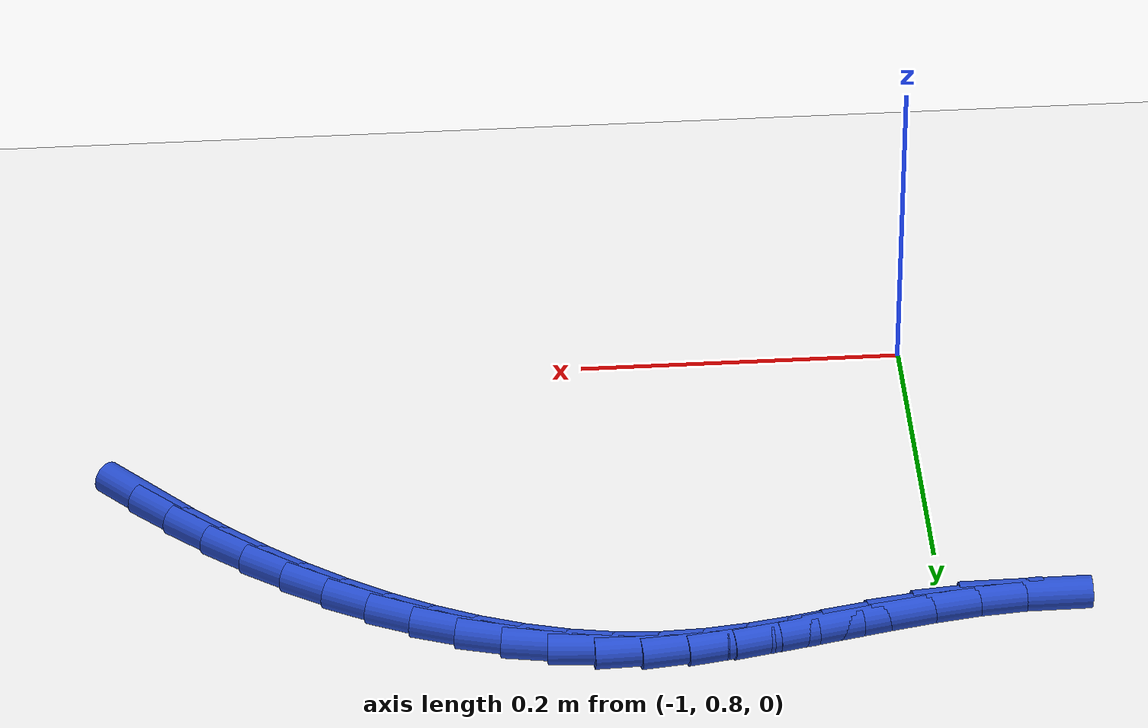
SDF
<sdf version="1.6">
 <world name="default">
  <model name="ground_plane">
   <static>1</static>
   <link name="link">
    <collision name="collision">
     <geometry><plane><normal>0 0 1</normal><size>100 100</size></plane></geometry>
     <surface><friction><ode><mu>100</mu><mu2>50</mu2></ode></friction></surface>
    </collision>
    <visual name="visual">
     <cast_shadows>0</cast_shadows>
     <geometry><plane><normal>0 0 1</normal><size>100 100</size></plane></geometry>
     <material>
      <script><uri>file://media/materials/scripts/gazebo.material</uri><name>Gazebo/WhiteGlow</name></script>
     </material>
    </visual>
   </link>
  </model>
  <model name="line">
   <link name="link_39">
    <pose>-0.5288231600094285 0.9290614733010362 0.01 0 1.57 -0.8015394465039641</pose>
    <collision name="collision">
     <geometry><cylinder><radius>0.01</radius><length>0.08</length></cylinder></geometry>
    </collision>
    <visual name="visual">
     <material>
      <script><name>Gazebo/Blue</name><uri>file://media/materials/scripts/gazebo.material</uri></script>
     </material>
     <geometry><cylinder><radius>0.01</radius><length>0.08</length></cylinder></geometry>
    </visual>
   </link>
   <link name="link_40">
    <pose>-0.5494263380062694 0.9503407465179796 0.01 0 1.57 -0.7560822204926323</pose>
    <collision name="collision">
     <geometry><cylinder><radius>0.01</radius><length>0.08</length></cylinder></geometry>
    </collision>
    <visual name="visual">
     <material>
      <script><name>Gazebo/Blue</name><uri>file://media/materials/scripts/gazebo.material</uri></script>
     </material>
     <geometry><cylinder><radius>0.01</radius><length>0.08</length></cylinder></geometry>
    </visual>
   </link>
   <link name="link_41">
    <pose>-0.5711463549652865 0.970823203607279 0.01 0 1.57 -0.7087451567530947</pose>
    <collision name="collision">
     <geometry><cylinder><radius>0.01</radius><length>0.08</length></cylinder></geometry>
    </collision>
    <visual name="visual">
     <material>
      <script><name>Gazebo/Blue</name><uri>file://media/materials/scripts/gazebo.material</uri></script>
     </material>
     <geometry><cylinder><radius>0.01</radius><length>0.08</length></cylinder></geometry>
    </visual>
   </link>
   <link name="link_42">
    <pose>-0.5938791844812488 0.9903131746831142 0.01 0 1.57 -0.6587697727177344</pose>
    <collision name="collision">
     <geometry><cylinder><radius>0.01</radius><length>0.08</length></cylinder></geometry>
    </collision>
    <visual name="visual">
     <material>
      <script><name>Gazebo/Blue</name><uri>file://media/materials/scripts/gazebo.material</uri></script>
     </material>
     <geometry><cylinder><radius>0.01</radius><length>0.08</length></cylinder></geometry>
    </visual>
   </link>
   <link name="link_43">
    <pose>-0.6175208001489252 1.0086149898596664 0.01 0 1.57 -0.6053669931212564</pose>
    <collision name="collision">
     <geometry><cylinder><radius>0.01</radius><length>0.08</length></cylinder></geometry>
    </collision>
    <visual name="visual">
     <material>
      <script><name>Gazebo/Blue</name><uri>file://media/materials/scripts/gazebo.material</uri></script>
     </material>
     <geometry><cylinder><radius>0.01</radius><length>0.08</length></cylinder></geometry>
    </visual>
   </link>
   <link name="link_44">
    <pose>-0.6419671755630845 1.0255329792511159 0.01 0 1.57 -0.5477039994844735</pose>
    <collision name="collision">
     <geometry><cylinder><radius>0.01</radius><length>0.08</length></cylinder></geometry>
    </collision>
    <visual name="visual">
     <material>
      <script><name>Gazebo/Blue</name><uri>file://media/materials/scripts/gazebo.material</uri></script>
     </material>
     <geometry><cylinder><radius>0.01</radius><length>0.08</length></cylinder></geometry>
    </visual>
   </link>
   <link name="link_45">
    <pose>-0.6671142843184957 1.0408714729716435 0.01 0 1.57 -0.48490221312924486</pose>
    <collision name="collision">
     <geometry><cylinder><radius>0.01</radius><length>0.08</length></cylinder></geometry>
    </collision>
    <visual name="visual">
     <material>
      <script><name>Gazebo/Blue</name><uri>file://media/materials/scripts/gazebo.material</uri></script>
     </material>
     <geometry><cylinder><radius>0.01</radius><length>0.08</length></cylinder></geometry>
    </visual>
   </link>
   <link name="link_46">
    <pose>-0.6928581000099273 1.05443480113543 0.01 0 1.57 -0.4160524611614517</pose>
    <collision name="collision">
     <geometry><cylinder><radius>0.01</radius><length>0.08</length></cylinder></geometry>
    </collision>
    <visual name="visual">
     <material>
      <script><name>Gazebo/Blue</name><uri>file://media/materials/scripts/gazebo.material</uri></script>
     </material>
     <geometry><cylinder><radius>0.01</radius><length>0.08</length></cylinder></geometry>
    </visual>
   </link>
   <link name="link_47">
    <pose>-0.7190945962321491 1.0660272938566564 0.01 0 1.57 -0.3402566744808497</pose>
    <collision name="collision">
     <geometry><cylinder><radius>0.01</radius><length>0.08</length></cylinder></geometry>
    </collision>
    <visual name="visual">
     <material>
      <script><name>Gazebo/Blue</name><uri>file://media/materials/scripts/gazebo.material</uri></script>
     </material>
     <geometry><cylinder><radius>0.01</radius><length>0.08</length></cylinder></geometry>
    </visual>
   </link>
   <link name="link_48">
    <pose>-0.7457197465799293 1.0754532812495032 0.01 0 1.57 -0.25670817175495614</pose>
    <collision name="collision">
     <geometry><cylinder><radius>0.01</radius><length>0.08</length></cylinder></geometry>
    </collision>
    <visual name="visual">
     <material>
      <script><name>Gazebo/Blue</name><uri>file://media/materials/scripts/gazebo.material</uri></script>
     </material>
     <geometry><cylinder><radius>0.01</radius><length>0.08</length></cylinder></geometry>
    </visual>
   </link>
   <link name="link_49">
    <pose>-0.7726295246480367 1.0825170934281505 0.01 0 1.57 -0.16482196395519444</pose>
    <collision name="collision">
     <geometry><cylinder><radius>0.01</radius><length>0.08</length></cylinder></geometry>
    </collision>
    <visual name="visual">
     <material>
      <script><name>Gazebo/Blue</name><uri>file://media/materials/scripts/gazebo.material</uri></script>
     </material>
     <geometry><cylinder><radius>0.01</radius><length>0.08</length></cylinder></geometry>
    </visual>
   </link>
   <link name="link_50">
    <pose>-0.7997199040312409 1.0870230605067799 0.01 0 1.57 -0.06441750527427997</pose>
    <collision name="collision">
     <geometry><cylinder><radius>0.01</radius><length>0.08</length></cylinder></geometry>
    </collision>
    <visual name="visual">
     <material>
      <script><name>Gazebo/Blue</name><uri>file://media/materials/scripts/gazebo.material</uri></script>
     </material>
     <geometry><cylinder><radius>0.01</radius><length>0.08</length></cylinder></geometry>
    </visual>
   </link>
   <link name="link_51">
    <pose>-0.8268868583243099 1.0887755125995715 0.01 0 1.57 0.03873584492412755</pose>
    <collision name="collision">
     <geometry><cylinder><radius>0.01</radius><length>0.08</length></cylinder></geometry>
    </collision>
    <visual name="visual">
     <material>
      <script><name>Gazebo/Blue</name><uri>file://media/materials/scripts/gazebo.material</uri></script>
     </material>
     <geometry><cylinder><radius>0.01</radius><length>0.08</length></cylinder></geometry>
    </visual>
   </link>
   <link name="link_52">
    <pose>-0.8540537548840204 1.08772265326158 0.01 0 1.57 0.12177452792422636</pose>
    <collision name="collision">
     <geometry><cylinder><radius>0.01</radius><length>0.08</length></cylinder></geometry>
    </collision>
    <visual name="visual">
     <material>
      <script><name>Gazebo/Blue</name><uri>file://media/materials/scripts/gazebo.material</uri></script>
     </material>
     <geometry><cylinder><radius>0.01</radius><length>0.08</length></cylinder></geometry>
    </visual>
   </link>
   <link name="link_53">
    <pose>-0.8812546083747644 1.084393811373627 0.01 0 1.57 0.17863850483599505</pose>
    <collision name="collision">
     <geometry><cylinder><radius>0.01</radius><length>0.08</length></cylinder></geometry>
    </collision>
    <visual name="visual">
     <material>
      <script><name>Gazebo/Blue</name><uri>file://media/materials/scripts/gazebo.material</uri></script>
     </material>
     <geometry><cylinder><radius>0.01</radius><length>0.08</length></cylinder></geometry>
    </visual>
   </link>
   <link name="link_54">
    <pose>-0.9085513659707032 1.0794650187882342 0.01 0 1.57 0.21003375993049386</pose>
    <collision name="collision">
     <geometry><cylinder><radius>0.01</radius><length>0.08</length></cylinder></geometry>
    </collision>
    <visual name="visual">
     <material>
      <script><name>Gazebo/Blue</name><uri>file://media/materials/scripts/gazebo.material</uri></script>
     </material>
     <geometry><cylinder><radius>0.01</radius><length>0.08</length></cylinder></geometry>
    </visual>
   </link>
   <link name="link_55">
    <pose>-0.9360059748469419 1.0736123073628914 0.01 0 1.57 0.21697174717925855</pose>
    <collision name="collision">
     <geometry><cylinder><radius>0.01</radius><length>0.08</length></cylinder></geometry>
    </collision>
    <visual name="visual">
     <material>
      <script><name>Gazebo/Blue</name><uri>file://media/materials/scripts/gazebo.material</uri></script>
     </material>
     <geometry><cylinder><radius>0.01</radius><length>0.08</length></cylinder></geometry>
    </visual>
   </link>
   <link name="link_56">
    <pose>-0.9636803821785873 1.0675117089550887 0.01 0 1.57 0.2001876166432829</pose>
    <collision name="collision">
     <geometry><cylinder><radius>0.01</radius><length>0.08</length></cylinder></geometry>
    </collision>
    <visual name="visual">
     <material>
      <script><name>Gazebo/Blue</name><uri>file://media/materials/scripts/gazebo.material</uri></script>
     </material>
     <geometry><cylinder><radius>0.01</radius><length>0.08</length></cylinder></geometry>
    </visual>
   </link>
   <link name="link_57">
    <pose>-0.9916365351407457 1.0618392554223173 0.01 0 1.57 0.16004349444617016</pose>
    <collision name="collision">
     <geometry><cylinder><radius>0.01</radius><length>0.08</length></cylinder></geometry>
    </collision>
    <visual name="visual">
     <material>
      <script><name>Gazebo/Blue</name><uri>file://media/materials/scripts/gazebo.material</uri></script>
     </material>
     <geometry><cylinder><radius>0.01</radius><length>0.08</length></cylinder></geometry>
    </visual>
   </link>
   <link name="link_58">
    <pose>-1.019936380908523 1.057270978622066 0.01 0 1.57 0.09682296834092433</pose>
    <collision name="collision">
     <geometry><cylinder><radius>0.01</radius><length>0.08</length></cylinder></geometry>
    </collision>
    <visual name="visual">
     <material>
      <script><name>Gazebo/Blue</name><uri>file://media/materials/scripts/gazebo.material</uri></script>
     </material>
     <geometry><cylinder><radius>0.01</radius><length>0.08</length></cylinder></geometry>
    </visual>
   </link>
   <link name="link_59">
    <pose>-1.0486418666570259 1.0544829104118265 0.01 0 1.57 0.011373963055307643</pose>
    <collision name="collision">
     <geometry><cylinder><radius>0.01</radius><length>0.08</length></cylinder></geometry>
    </collision>
    <visual name="visual">
     <material>
      <script><name>Gazebo/Blue</name><uri>file://media/materials/scripts/gazebo.material</uri></script>
     </material>
     <geometry><cylinder><radius>0.01</radius><length>0.08</length></cylinder></geometry>
    </visual>
   </link>
  </model>
 </world>
</sdf>
